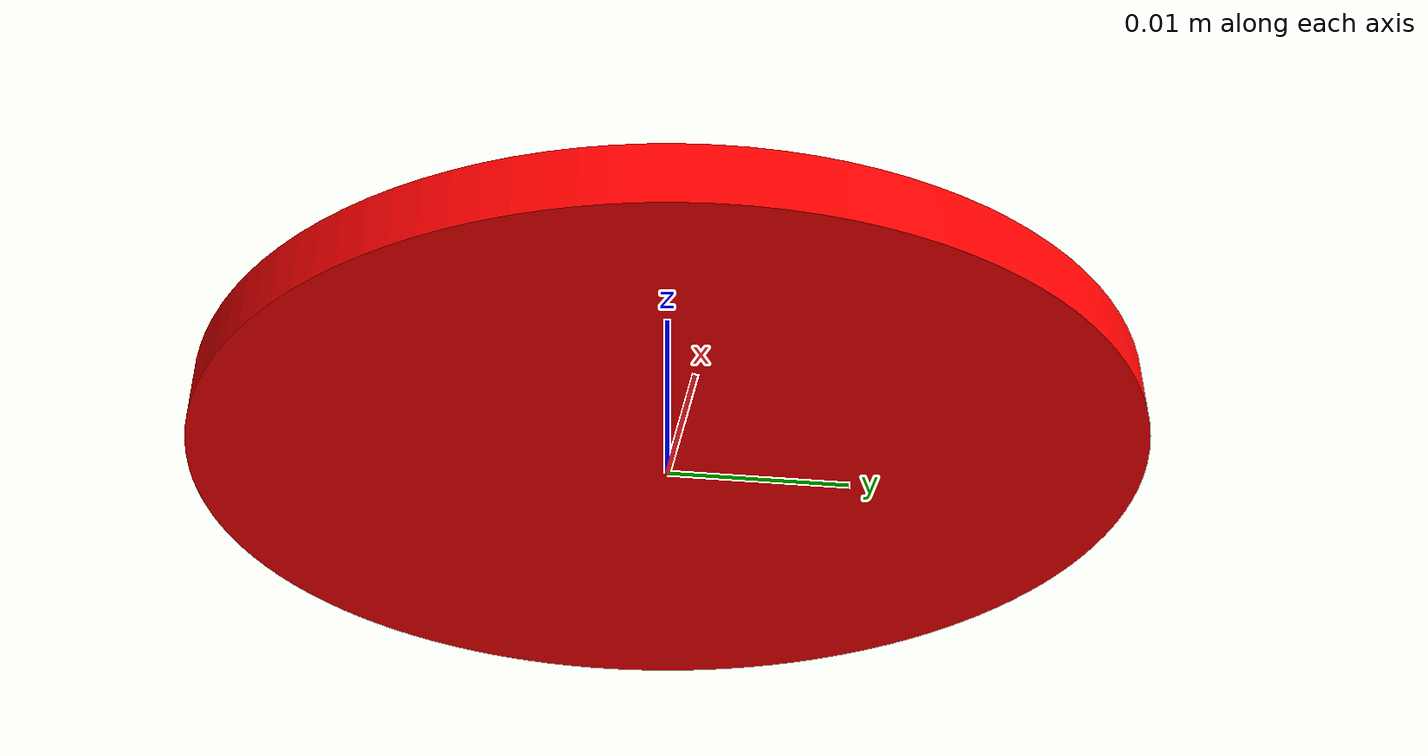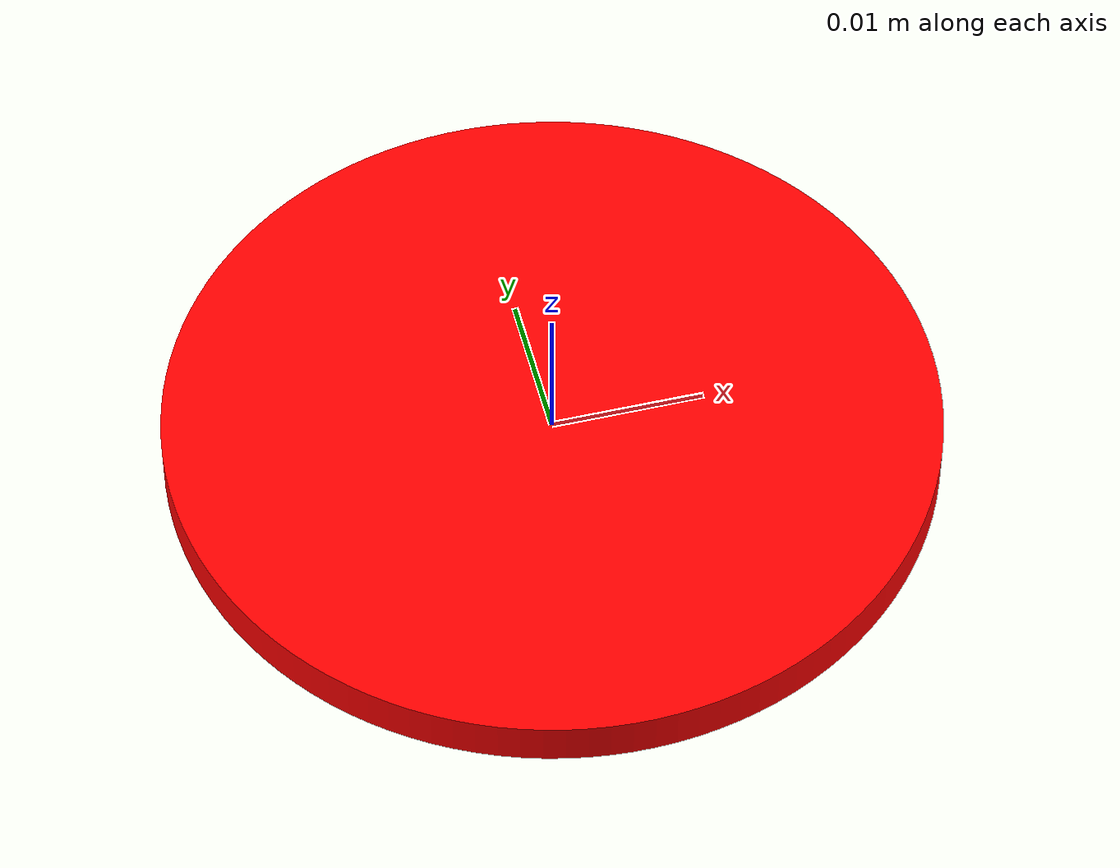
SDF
<?xml version="1.0" ?>
<sdf version="1.6">
  <model name="puck">
    <link name="puck_link">

      <!-- Inerzia -->
      <inertial>
        <pose>0 0 0 0 0 0</pose>
        <mass>0.01</mass>
        <inertia>
          <ixx>10.0</ixx>
          <iyy>10.0</iyy>
          <izz>0.01</izz>
          <ixy>0.0</ixy>
          <ixz>0.0</ixz>
          <iyz>0.0</iyz>
        </inertia>
      </inertial>

      <!-- Visual -->
      <visual name="puck_visual">
        <pose>0 0 0 0 0 0</pose>
        <geometry>
          <mesh>
            <uri>file:///home/edoardopottocar/Desktop/Robotics/catkin_ws/src/scene/meshes/airhockey-puck.stl</uri>
            <scale>0.001 0.001 0.001</scale>
          </mesh>
        </geometry>
        <material>
          <ambient>1 0 0 1</ambient>
          <diffuse>1 0 0 1</diffuse>
        </material>
      </visual>

      <!-- Collision -->
      <collision name="puck_collision">
        <pose>0 0 0 0 0 0</pose>
        <geometry>
          <mesh>
            <uri>file:///home/edoardopottocar/Desktop/Robotics/catkin_ws/src/scene/meshes/airhockey-puck.stl</uri>
            <scale>0.001 0.001 0.001</scale>
          </mesh>
        </geometry>
      </collision>

      <!-- Parametri fisici specifici per Gazebo -->
      <gazebo reference="puck_link">
        <surface>
          <friction>
            <bullet>
              <friction>0.01</friction>       <!-- attrito bassissimo per scorrimento -->
              <rolling_friction>0.0</rolling_friction>
              <spinning_friction>0.0</spinning_friction>
            </bullet>
            <ode>
              <!-- Coefficienti di attrito -->
              <mu>0.01</mu>
              <mu2>0.01</mu2>
              <!-- Slip (per simulare scivolamento fluido sul piano) -->
              <slip1>0.0</slip1>
              <slip2>0.0</slip2>
            </ode>
          </friction>
          <bounce>
            <restitution_coefficient>0.0</restitution_coefficient>  <!-- rimbalzo minimo -->
            <threshold>0.0</threshold>
          </bounce>
          <contact>
            <bullet>
              <soft_contact>0</soft_contact>
            </bullet>
            <ode>
              <!-- Parametri di contatto -->
              <kp>1000.0</kp>  <!-- rigidità -->
              <kd>10.0</kd>         <!-- smorzamento -->
              <max_vel>100</max_vel>
              <min_depth>0.00001</min_depth>
            </ode>
          </contact>
        </surface>
      </gazebo>

    </link>
  </model>
</sdf>
